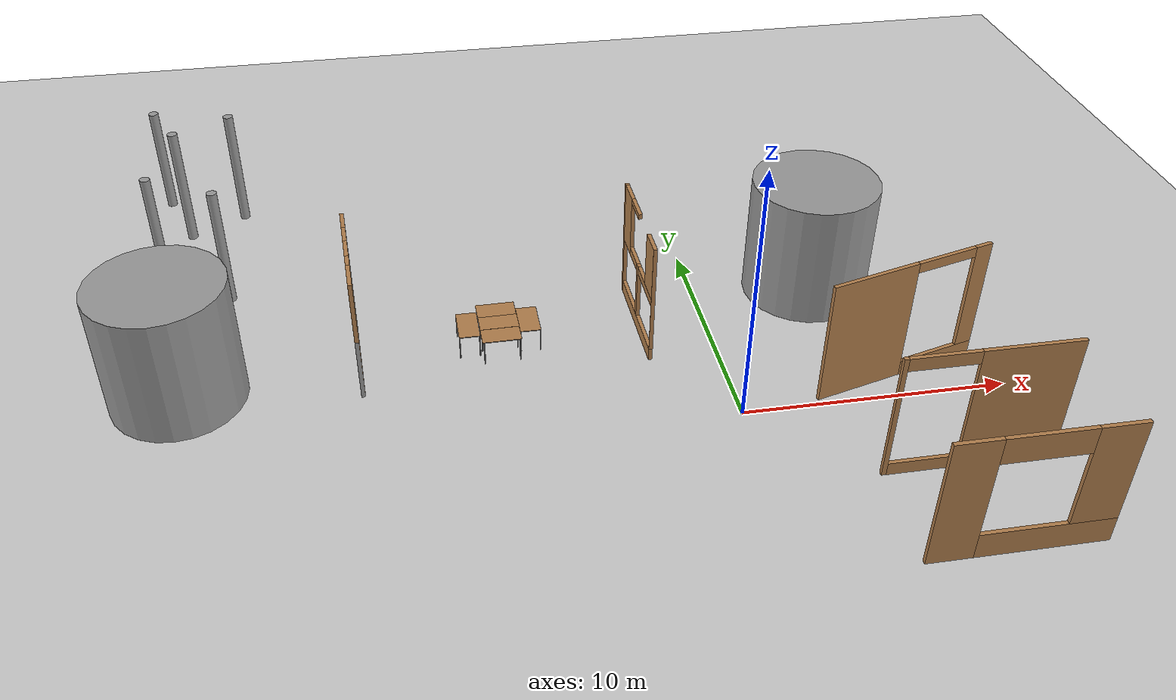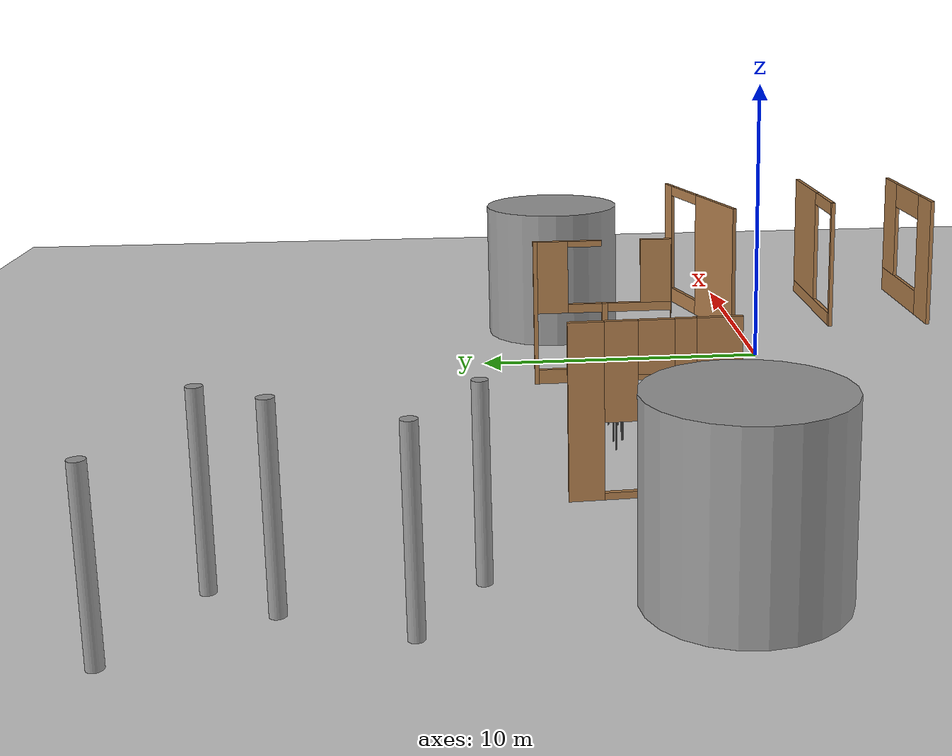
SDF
<sdf version="1.6">
 <world name="default">
  <model name="ground_plane">
   <static>1</static>
   <link name="link">
    <collision name="collision">
     <geometry><plane><normal>0 0 1</normal><size>100 100</size></plane></geometry>
     <surface><friction><ode><mu>100</mu><mu2>50</mu2></ode></friction></surface>
    </collision>
    <visual name="visual">
     <cast_shadows>0</cast_shadows>
     <geometry><plane><normal>0 0 1</normal><size>100 100</size></plane></geometry>
     <material>
      <script><uri>file://media/materials/scripts/gazebo.material</uri><name>Gazebo/Grey</name></script>
     </material>
    </visual>
   </link>
  </model>
  <model name="testing_world3_all_models">
   <link name="link">
    <inertial>
     <mass>200</mass>
     <inertia><ixx>729.167</ixx><ixy>0</ixy><ixz>0</ixz><iyy>729.167</iyy><iyz>0</iyz><izz>625</izz></inertia>
    </inertial>
    <pose>-1.38557 1.65488 2.5 0 -0 0</pose>
    <visual name="visual">
     <geometry><cylinder><radius>2.5</radius><length>5</length></cylinder></geometry>
     <material>
      <script><name>Gazebo/Grey</name><uri>file://media/materials/scripts/gazebo.material</uri></script>
      <shader type="pixel"><normal_map>__default__</normal_map></shader>
      <ambient>0.3 0.3 0.3 1</ambient>
      <diffuse>0.7 0.7 0.7 1</diffuse>
      <specular>0.01 0.01 0.01 1</specular>
      <emissive>0 0 0 1</emissive>
     </material>
    </visual>
    <collision name="collision">
     <geometry><cylinder><radius>2.5</radius><length>5</length></cylinder></geometry>
     <surface>
      <friction>
       <ode><mu>1</mu><mu2>1</mu2><fdir1>0 0 0</fdir1><slip1>0</slip1><slip2>0</slip2></ode>
       <torsional>
        <coefficient>1</coefficient>
        <patch_radius>0</patch_radius>
        <surface_radius>0</surface_radius>
        <use_patch_radius>1</use_patch_radius>
        <ode><slip>0</slip></ode>
       </torsional>
      </friction>
      <bounce><restitution_coefficient>0</restitution_coefficient><threshold>1e+06</threshold></bounce>
      <contact>
       <collide_without_contact>0</collide_without_contact>
       <collide_without_contact_bitmask>1</collide_without_contact_bitmask>
       <collide_bitmask>1</collide_bitmask>
       <ode>
        <soft_cfm>0</soft_cfm>
        <soft_erp>0.2</soft_erp>
        <kp>1e+13</kp>
        <kd>1</kd>
        <max_vel>0.01</max_vel>
        <min_depth>0</min_depth>
       </ode>
       <bullet>
        <split_impulse>1</split_impulse>
        <split_impulse_penetration_threshold>-0.01</split_impulse_penetration_threshold>
        <soft_cfm>0</soft_cfm>
        <soft_erp>0.2</soft_erp>
        <kp>1e+13</kp>
        <kd>1</kd>
       </bullet>
      </contact>
     </surface>
    </collision>
   </link>
   <link name="link_0">
    <inertial>
     <mass>100</mass>
     <inertia><ixx>209.333</ixx><ixy>0</ixy><ixz>0</ixz><iyy>209.333</iyy><iyz>0</iyz><izz>2</izz></inertia>
    </inertial>
    <pose>-27.5231 12.9662 2.04889 0 -0 0</pose>
    <visual name="visual">
     <geometry><cylinder><radius>0.2</radius><length>5</length></cylinder></geometry>
     <material>
      <lighting>1</lighting>
      <script><uri>file://media/materials/scripts/gazebo.material</uri><name>Gazebo/Grey</name></script>
      <shader type="pixel"><normal_map>__default__</normal_map></shader>
      <ambient>0.3 0.3 0.3 1</ambient>
      <diffuse>0.7 0.7 0.7 1</diffuse>
      <specular>0.01 0.01 0.01 1</specular>
      <emissive>0 0 0 1</emissive>
     </material>
    </visual>
    <collision name="collision">
     <geometry><cylinder><radius>0.2</radius><length>5</length></cylinder></geometry>
     <surface>
      <friction>
       <ode><mu>1</mu><mu2>1</mu2><fdir1>0 0 0</fdir1><slip1>0</slip1><slip2>0</slip2></ode>
       <torsional>
        <coefficient>1</coefficient>
        <patch_radius>0</patch_radius>
        <surface_radius>0</surface_radius>
        <use_patch_radius>1</use_patch_radius>
        <ode><slip>0</slip></ode>
       </torsional>
      </friction>
      <bounce><restitution_coefficient>0</restitution_coefficient><threshold>1e+06</threshold></bounce>
      <contact>
       <collide_without_contact>0</collide_without_contact>
       <collide_without_contact_bitmask>1</collide_without_contact_bitmask>
       <collide_bitmask>1</collide_bitmask>
       <ode>
        <soft_cfm>0</soft_cfm>
        <soft_erp>0.2</soft_erp>
        <kp>1e+13</kp>
        <kd>1</kd>
        <max_vel>0.01</max_vel>
        <min_depth>0</min_depth>
       </ode>
       <bullet>
        <split_impulse>1</split_impulse>
        <split_impulse_penetration_threshold>-0.01</split_impulse_penetration_threshold>
        <soft_cfm>0</soft_cfm>
        <soft_erp>0.2</soft_erp>
        <kp>1e+13</kp>
        <kd>1</kd>
       </bullet>
      </contact>
     </surface>
    </collision>
   </link>
   <link name="link_0_clone">
    <inertial>
     <mass>100</mass>
     <inertia><ixx>209.333</ixx><ixy>0</ixy><ixz>0</ixz><iyy>209.333</iyy><iyz>0</iyz><izz>2</izz></inertia>
    </inertial>
    <pose>-24.2152 11.2245 2.5 0 -0 0</pose>
    <visual name="visual">
     <geometry><cylinder><radius>0.2</radius><length>5</length></cylinder></geometry>
     <material>
      <lighting>1</lighting>
      <script><uri>file://media/materials/scripts/gazebo.material</uri><name>Gazebo/Grey</name></script>
      <shader type="pixel"><normal_map>__default__</normal_map></shader>
      <ambient>0.3 0.3 0.3 1</ambient>
      <diffuse>0.7 0.7 0.7 1</diffuse>
      <specular>0.01 0.01 0.01 1</specular>
      <emissive>0 0 0 1</emissive>
     </material>
    </visual>
    <collision name="collision">
     <geometry><cylinder><radius>0.2</radius><length>5</length></cylinder></geometry>
     <surface>
      <friction>
       <ode><mu>1</mu><mu2>1</mu2><fdir1>0 0 0</fdir1><slip1>0</slip1><slip2>0</slip2></ode>
       <torsional>
        <coefficient>1</coefficient>
        <patch_radius>0</patch_radius>
        <surface_radius>0</surface_radius>
        <use_patch_radius>1</use_patch_radius>
        <ode><slip>0</slip></ode>
       </torsional>
      </friction>
      <bounce><restitution_coefficient>0</restitution_coefficient><threshold>1e+06</threshold></bounce>
      <contact>
       <collide_without_contact>0</collide_without_contact>
       <collide_without_contact_bitmask>1</collide_without_contact_bitmask>
       <collide_bitmask>1</collide_bitmask>
       <ode>
        <soft_cfm>0</soft_cfm>
        <soft_erp>0.2</soft_erp>
        <kp>1e+13</kp>
        <kd>1</kd>
        <max_vel>0.01</max_vel>
        <min_depth>0</min_depth>
       </ode>
       <bullet>
        <split_impulse>1</split_impulse>
        <split_impulse_penetration_threshold>-0.01</split_impulse_penetration_threshold>
        <soft_cfm>0</soft_cfm>
        <soft_erp>0.2</soft_erp>
        <kp>1e+13</kp>
        <kd>1</kd>
       </bullet>
      </contact>
     </surface>
    </collision>
   </link>
   <link name="link_0_clone_clone">
    <inertial>
     <mass>100</mass>
     <inertia><ixx>209.333</ixx><ixy>0</ixy><ixz>0</ixz><iyy>209.333</iyy><iyz>0</iyz><izz>2</izz></inertia>
    </inertial>
    <pose>-27.1694 6.37885 2.5 0 -0 0</pose>
    <visual name="visual">
     <geometry><cylinder><radius>0.2</radius><length>5</length></cylinder></geometry>
     <material>
      <lighting>1</lighting>
      <script><uri>file://media/materials/scripts/gazebo.material</uri><name>Gazebo/Grey</name></script>
      <shader type="pixel"><normal_map>__default__</normal_map></shader>
      <ambient>0.3 0.3 0.3 1</ambient>
      <diffuse>0.7 0.7 0.7 1</diffuse>
      <specular>0.01 0.01 0.01 1</specular>
      <emissive>0 0 0 1</emissive>
     </material>
    </visual>
    <collision name="collision">
     <geometry><cylinder><radius>0.2</radius><length>5</length></cylinder></geometry>
     <surface>
      <friction>
       <ode><mu>1</mu><mu2>1</mu2><fdir1>0 0 0</fdir1><slip1>0</slip1><slip2>0</slip2></ode>
       <torsional>
        <coefficient>1</coefficient>
        <patch_radius>0</patch_radius>
        <surface_radius>0</surface_radius>
        <use_patch_radius>1</use_patch_radius>
        <ode><slip>0</slip></ode>
       </torsional>
      </friction>
      <bounce><restitution_coefficient>0</restitution_coefficient><threshold>1e+06</threshold></bounce>
      <contact>
       <collide_without_contact>0</collide_without_contact>
       <collide_without_contact_bitmask>1</collide_without_contact_bitmask>
       <collide_bitmask>1</collide_bitmask>
       <ode>
        <soft_cfm>0</soft_cfm>
        <soft_erp>0.2</soft_erp>
        <kp>1e+13</kp>
        <kd>1</kd>
        <max_vel>0.01</max_vel>
        <min_depth>0</min_depth>
       </ode>
       <bullet>
        <split_impulse>1</split_impulse>
        <split_impulse_penetration_threshold>-0.01</split_impulse_penetration_threshold>
        <soft_cfm>0</soft_cfm>
        <soft_erp>0.2</soft_erp>
        <kp>1e+13</kp>
        <kd>1</kd>
       </bullet>
      </contact>
     </surface>
    </collision>
   </link>
   <link name="link_0_clone_clone_0">
    <inertial>
     <mass>100</mass>
     <inertia><ixx>209.333</ixx><ixy>0</ixy><ixz>0</ixz><iyy>209.333</iyy><iyz>0</iyz><izz>2</izz></inertia>
    </inertial>
    <pose>-26.3097 9.3818 2.82317 0 -0 0</pose>
    <visual name="visual">
     <geometry><cylinder><radius>0.2</radius><length>5</length></cylinder></geometry>
     <material>
      <lighting>1</lighting>
      <script><uri>file://media/materials/scripts/gazebo.material</uri><name>Gazebo/Grey</name></script>
      <shader type="pixel"><normal_map>__default__</normal_map></shader>
      <ambient>0.3 0.3 0.3 1</ambient>
      <diffuse>0.7 0.7 0.7 1</diffuse>
      <specular>0.01 0.01 0.01 1</specular>
      <emissive>0 0 0 1</emissive>
     </material>
    </visual>
    <collision name="collision">
     <geometry><cylinder><radius>0.2</radius><length>5</length></cylinder></geometry>
     <surface>
      <friction>
       <ode><mu>1</mu><mu2>1</mu2><fdir1>0 0 0</fdir1><slip1>0</slip1><slip2>0</slip2></ode>
       <torsional>
        <coefficient>1</coefficient>
        <patch_radius>0</patch_radius>
        <surface_radius>0</surface_radius>
        <use_patch_radius>1</use_patch_radius>
        <ode><slip>0</slip></ode>
       </torsional>
      </friction>
      <bounce><restitution_coefficient>0</restitution_coefficient><threshold>1e+06</threshold></bounce>
      <contact>
       <collide_without_contact>0</collide_without_contact>
       <collide_without_contact_bitmask>1</collide_without_contact_bitmask>
       <collide_bitmask>1</collide_bitmask>
       <ode>
        <soft_cfm>0</soft_cfm>
        <soft_erp>0.2</soft_erp>
        <kp>1e+13</kp>
        <kd>1</kd>
        <max_vel>0.01</max_vel>
        <min_depth>0</min_depth>
       </ode>
       <bullet>
        <split_impulse>1</split_impulse>
        <split_impulse_penetration_threshold>-0.01</split_impulse_penetration_threshold>
        <soft_cfm>0</soft_cfm>
        <soft_erp>0.2</soft_erp>
        <kp>1e+13</kp>
        <kd>1</kd>
       </bullet>
      </contact>
     </surface>
    </collision>
   </link>
   <link name="link_0_clone_clone_1">
    <inertial>
     <mass>100</mass>
     <inertia><ixx>209.333</ixx><ixy>0</ixy><ixz>0</ixz><iyy>209.333</iyy><iyz>0</iyz><izz>2</izz></inertia>
    </inertial>
    <pose>-24.5503 4.86502 2.5 0 -0 0</pose>
    <visual name="visual">
     <geometry><cylinder><radius>0.2</radius><length>5</length></cylinder></geometry>
     <material>
      <lighting>1</lighting>
      <script><uri>file://media/materials/scripts/gazebo.material</uri><name>Gazebo/Grey</name></script>
      <shader type="pixel"><normal_map>__default__</normal_map></shader>
      <ambient>0.3 0.3 0.3 1</ambient>
      <diffuse>0.7 0.7 0.7 1</diffuse>
      <specular>0.01 0.01 0.01 1</specular>
      <emissive>0 0 0 1</emissive>
     </material>
    </visual>
    <collision name="collision">
     <geometry><cylinder><radius>0.2</radius><length>5</length></cylinder></geometry>
     <surface>
      <friction>
       <ode><mu>1</mu><mu2>1</mu2><fdir1>0 0 0</fdir1><slip1>0</slip1><slip2>0</slip2></ode>
       <torsional>
        <coefficient>1</coefficient>
        <patch_radius>0</patch_radius>
        <surface_radius>0</surface_radius>
        <use_patch_radius>1</use_patch_radius>
        <ode><slip>0</slip></ode>
       </torsional>
      </friction>
      <bounce><restitution_coefficient>0</restitution_coefficient><threshold>1e+06</threshold></bounce>
      <contact>
       <collide_without_contact>0</collide_without_contact>
       <collide_without_contact_bitmask>1</collide_without_contact_bitmask>
       <collide_bitmask>1</collide_bitmask>
       <ode>
        <soft_cfm>0</soft_cfm>
        <soft_erp>0.2</soft_erp>
        <kp>1e+13</kp>
        <kd>1</kd>
        <max_vel>0.01</max_vel>
        <min_depth>0</min_depth>
       </ode>
       <bullet>
        <split_impulse>1</split_impulse>
        <split_impulse_penetration_threshold>-0.01</split_impulse_penetration_threshold>
        <soft_cfm>0</soft_cfm>
        <soft_erp>0.2</soft_erp>
        <kp>1e+13</kp>
        <kd>1</kd>
       </bullet>
      </contact>
     </surface>
    </collision>
   </link>
   <link name="link_clone">
    <inertial>
     <mass>200</mass>
     <inertia><ixx>729.167</ixx><ixy>0</ixy><ixz>0</ixz><iyy>729.167</iyy><iyz>0</iyz><izz>625</izz></inertia>
    </inertial>
    <pose>-26.1585 -1.04313 2.5 0 -0 0</pose>
    <visual name="visual">
     <geometry><cylinder><radius>2.5</radius><length>5</length></cylinder></geometry>
     <material>
      <script><name>Gazebo/Grey</name><uri>file://media/materials/scripts/gazebo.material</uri></script>
      <shader type="pixel"><normal_map>__default__</normal_map></shader>
      <ambient>0.3 0.3 0.3 1</ambient>
      <diffuse>0.7 0.7 0.7 1</diffuse>
      <specular>0.01 0.01 0.01 1</specular>
      <emissive>0 0 0 1</emissive>
     </material>
    </visual>
    <collision name="collision">
     <geometry><cylinder><radius>2.5</radius><length>5</length></cylinder></geometry>
     <surface>
      <friction>
       <ode><mu>1</mu><mu2>1</mu2><fdir1>0 0 0</fdir1><slip1>0</slip1><slip2>0</slip2></ode>
       <torsional>
        <coefficient>1</coefficient>
        <patch_radius>0</patch_radius>
        <surface_radius>0</surface_radius>
        <use_patch_radius>1</use_patch_radius>
        <ode><slip>0</slip></ode>
       </torsional>
      </friction>
      <bounce><restitution_coefficient>0</restitution_coefficient><threshold>1e+06</threshold></bounce>
      <contact>
       <collide_without_contact>0</collide_without_contact>
       <collide_without_contact_bitmask>1</collide_without_contact_bitmask>
       <collide_bitmask>1</collide_bitmask>
       <ode>
        <soft_cfm>0</soft_cfm>
        <soft_erp>0.2</soft_erp>
        <kp>1e+13</kp>
        <kd>1</kd>
        <max_vel>0.01</max_vel>
        <min_depth>0</min_depth>
       </ode>
       <bullet>
        <split_impulse>1</split_impulse>
        <split_impulse_penetration_threshold>-0.01</split_impulse_penetration_threshold>
        <soft_cfm>0</soft_cfm>
        <soft_erp>0.2</soft_erp>
        <kp>1e+13</kp>
        <kd>1</kd>
       </bullet>
      </contact>
     </surface>
    </collision>
   </link>
   <model name="table">
    <static>1</static>
    <link name="link">
     <collision name="surface">
      <pose>0 0 1 0 -0 0</pose>
      <geometry><box><size>1.5 0.8 0.03</size></box></geometry>
      <surface><friction><ode><mu>0.6</mu><mu2>0.6</mu2></ode></friction></surface>
     </collision>
     <visual name="visual1">
      <pose>0 0 1 0 -0 0</pose>
      <geometry><box><size>1.5 0.8 0.03</size></box></geometry>
      <material>
       <script><uri>file://media/materials/scripts/gazebo.material</uri><name>Gazebo/Wood</name></script>
      </material>
     </visual>
     <collision name="front_left_leg">
      <pose>0.68 0.38 0.5 0 -0 0</pose>
      <geometry><cylinder><radius>0.02</radius><length>1</length></cylinder></geometry>
     </collision>
     <visual name="front_left_leg">
      <pose>0.68 0.38 0.5 0 -0 0</pose>
      <geometry><cylinder><radius>0.02</radius><length>1</length></cylinder></geometry>
      <material>
       <script><uri>file://media/materials/scripts/gazebo.material</uri><name>Gazebo/Grey</name></script>
      </material>
     </visual>
     <collision name="front_right_leg">
      <pose>0.68 -0.38 0.5 0 -0 0</pose>
      <geometry><cylinder><radius>0.02</radius><length>1</length></cylinder></geometry>
     </collision>
     <visual name="front_right_leg">
      <pose>0.68 -0.38 0.5 0 -0 0</pose>
      <geometry><cylinder><radius>0.02</radius><length>1</length></cylinder></geometry>
      <material>
       <script><uri>file://media/materials/scripts/gazebo.material</uri><name>Gazebo/Grey</name></script>
      </material>
     </visual>
     <collision name="back_right_leg">
      <pose>-0.68 -0.38 0.5 0 -0 0</pose>
      <geometry><cylinder><radius>0.02</radius><length>1</length></cylinder></geometry>
     </collision>
     <visual name="back_right_leg">
      <pose>-0.68 -0.38 0.5 0 -0 0</pose>
      <geometry><cylinder><radius>0.02</radius><length>1</length></cylinder></geometry>
      <material>
       <script><uri>file://media/materials/scripts/gazebo.material</uri><name>Gazebo/Grey</name></script>
      </material>
     </visual>
     <collision name="back_left_leg">
      <pose>-0.68 0.38 0.5 0 -0 0</pose>
      <geometry><cylinder><radius>0.02</radius><length>1</length></cylinder></geometry>
     </collision>
     <visual name="back_left_leg">
      <pose>-0.68 0.38 0.5 0 -0 0</pose>
      <geometry><cylinder><radius>0.02</radius><length>1</length></cylinder></geometry>
      <material>
       <script><uri>file://media/materials/scripts/gazebo.material</uri><name>Gazebo/Grey</name></script>
      </material>
     </visual>
    </link>
    <pose>-14.2177 0.080992 -0 0 -0 0</pose>
   </model>
   <model name="table_clone">
    <static>1</static>
    <link name="link">
     <collision name="surface">
      <pose>0 0 1 0 -0 0</pose>
      <geometry><box><size>1.5 0.8 0.03</size></box></geometry>
      <surface><friction><ode><mu>0.6</mu><mu2>0.6</mu2></ode></friction></surface>
     </collision>
     <visual name="visual1">
      <pose>0 0 1 0 -0 0</pose>
      <geometry><box><size>1.5 0.8 0.03</size></box></geometry>
      <material>
       <script><uri>file://media/materials/scripts/gazebo.material</uri><name>Gazebo/Wood</name></script>
      </material>
     </visual>
     <collision name="front_left_leg">
      <pose>0.68 0.38 0.5 0 -0 0</pose>
      <geometry><cylinder><radius>0.02</radius><length>1</length></cylinder></geometry>
     </collision>
     <visual name="front_left_leg">
      <pose>0.68 0.38 0.5 0 -0 0</pose>
      <geometry><cylinder><radius>0.02</radius><length>1</length></cylinder></geometry>
      <material>
       <script><uri>file://media/materials/scripts/gazebo.material</uri><name>Gazebo/Grey</name></script>
      </material>
     </visual>
     <collision name="front_right_leg">
      <pose>0.68 -0.38 0.5 0 -0 0</pose>
      <geometry><cylinder><radius>0.02</radius><length>1</length></cylinder></geometry>
     </collision>
     <visual name="front_right_leg">
      <pose>0.68 -0.38 0.5 0 -0 0</pose>
      <geometry><cylinder><radius>0.02</radius><length>1</length></cylinder></geometry>
      <material>
       <script><uri>file://media/materials/scripts/gazebo.material</uri><name>Gazebo/Grey</name></script>
      </material>
     </visual>
     <collision name="back_right_leg">
      <pose>-0.68 -0.38 0.5 0 -0 0</pose>
      <geometry><cylinder><radius>0.02</radius><length>1</length></cylinder></geometry>
     </collision>
     <visual name="back_right_leg">
      <pose>-0.68 -0.38 0.5 0 -0 0</pose>
      <geometry><cylinder><radius>0.02</radius><length>1</length></cylinder></geometry>
      <material>
       <script><uri>file://media/materials/scripts/gazebo.material</uri><name>Gazebo/Grey</name></script>
      </material>
     </visual>
     <collision name="back_left_leg">
      <pose>-0.68 0.38 0.5 0 -0 0</pose>
      <geometry><cylinder><radius>0.02</radius><length>1</length></cylinder></geometry>
     </collision>
     <visual name="back_left_leg">
      <pose>-0.68 0.38 0.5 0 -0 0</pose>
      <geometry><cylinder><radius>0.02</radius><length>1</length></cylinder></geometry>
      <material>
       <script><uri>file://media/materials/scripts/gazebo.material</uri><name>Gazebo/Grey</name></script>
      </material>
     </visual>
    </link>
    <pose>-14.2277 -0.726408 -0 0 -0 0</pose>
   </model>
   <model name="table_clone_0">
    <static>1</static>
    <link name="link">
     <collision name="surface">
      <pose>0 0 1 0 -0 0</pose>
      <geometry><box><size>1.5 0.8 0.03</size></box></geometry>
      <surface><friction><ode><mu>0.6</mu><mu2>0.6</mu2></ode></friction></surface>
     </collision>
     <visual name="visual1">
      <pose>0 0 1 0 -0 0</pose>
      <geometry><box><size>1.5 0.8 0.03</size></box></geometry>
      <material>
       <script><uri>file://media/materials/scripts/gazebo.material</uri><name>Gazebo/Wood</name></script>
      </material>
     </visual>
     <collision name="front_left_leg">
      <pose>0.68 0.38 0.5 0 -0 0</pose>
      <geometry><cylinder><radius>0.02</radius><length>1</length></cylinder></geometry>
     </collision>
     <visual name="front_left_leg">
      <pose>0.68 0.38 0.5 0 -0 0</pose>
      <geometry><cylinder><radius>0.02</radius><length>1</length></cylinder></geometry>
      <material>
       <script><uri>file://media/materials/scripts/gazebo.material</uri><name>Gazebo/Grey</name></script>
      </material>
     </visual>
     <collision name="front_right_leg">
      <pose>0.68 -0.38 0.5 0 -0 0</pose>
      <geometry><cylinder><radius>0.02</radius><length>1</length></cylinder></geometry>
     </collision>
     <visual name="front_right_leg">
      <pose>0.68 -0.38 0.5 0 -0 0</pose>
      <geometry><cylinder><radius>0.02</radius><length>1</length></cylinder></geometry>
      <material>
       <script><uri>file://media/materials/scripts/gazebo.material</uri><name>Gazebo/Grey</name></script>
      </material>
     </visual>
     <collision name="back_right_leg">
      <pose>-0.68 -0.38 0.5 0 -0 0</pose>
      <geometry><cylinder><radius>0.02</radius><length>1</length></cylinder></geometry>
     </collision>
     <visual name="back_right_leg">
      <pose>-0.68 -0.38 0.5 0 -0 0</pose>
      <geometry><cylinder><radius>0.02</radius><length>1</length></cylinder></geometry>
      <material>
       <script><uri>file://media/materials/scripts/gazebo.material</uri><name>Gazebo/Grey</name></script>
      </material>
     </visual>
     <collision name="back_left_leg">
      <pose>-0.68 0.38 0.5 0 -0 0</pose>
      <geometry><cylinder><radius>0.02</radius><length>1</length></cylinder></geometry>
     </collision>
     <visual name="back_left_leg">
      <pose>-0.68 0.38 0.5 0 -0 0</pose>
      <geometry><cylinder><radius>0.02</radius><length>1</length></cylinder></geometry>
      <material>
       <script><uri>file://media/materials/scripts/gazebo.material</uri><name>Gazebo/Grey</name></script>
      </material>
     </visual>
    </link>
    <pose>-14.2241 0.878995 -0 0 -0 0</pose>
   </model>
   <model name="table_clone_1">
    <static>1</static>
    <link name="link">
     <collision name="surface">
      <pose>0 0 1 0 -0 0</pose>
      <geometry><box><size>1.5 0.8 0.03</size></box></geometry>
      <surface><friction><ode><mu>0.6</mu><mu2>0.6</mu2></ode></friction></surface>
     </collision>
     <visual name="visual1">
      <pose>0 0 1 0 -0 0</pose>
      <geometry><box><size>1.5 0.8 0.03</size></box></geometry>
      <material>
       <script><uri>file://media/materials/scripts/gazebo.material</uri><name>Gazebo/Wood</name></script>
      </material>
     </visual>
     <collision name="front_left_leg">
      <pose>0.68 0.38 0.5 0 -0 0</pose>
      <geometry><cylinder><radius>0.02</radius><length>1</length></cylinder></geometry>
     </collision>
     <visual name="front_left_leg">
      <pose>0.68 0.38 0.5 0 -0 0</pose>
      <geometry><cylinder><radius>0.02</radius><length>1</length></cylinder></geometry>
      <material>
       <script><uri>file://media/materials/scripts/gazebo.material</uri><name>Gazebo/Grey</name></script>
      </material>
     </visual>
     <collision name="front_right_leg">
      <pose>0.68 -0.38 0.5 0 -0 0</pose>
      <geometry><cylinder><radius>0.02</radius><length>1</length></cylinder></geometry>
     </collision>
     <visual name="front_right_leg">
      <pose>0.68 -0.38 0.5 0 -0 0</pose>
      <geometry><cylinder><radius>0.02</radius><length>1</length></cylinder></geometry>
      <material>
       <script><uri>file://media/materials/scripts/gazebo.material</uri><name>Gazebo/Grey</name></script>
      </material>
     </visual>
     <collision name="back_right_leg">
      <pose>-0.68 -0.38 0.5 0 -0 0</pose>
      <geometry><cylinder><radius>0.02</radius><length>1</length></cylinder></geometry>
     </collision>
     <visual name="back_right_leg">
      <pose>-0.68 -0.38 0.5 0 -0 0</pose>
      <geometry><cylinder><radius>0.02</radius><length>1</length></cylinder></geometry>
      <material>
       <script><uri>file://media/materials/scripts/gazebo.material</uri><name>Gazebo/Grey</name></script>
      </material>
     </visual>
     <collision name="back_left_leg">
      <pose>-0.68 0.38 0.5 0 -0 0</pose>
      <geometry><cylinder><radius>0.02</radius><length>1</length></cylinder></geometry>
     </collision>
     <visual name="back_left_leg">
      <pose>-0.68 0.38 0.5 0 -0 0</pose>
      <geometry><cylinder><radius>0.02</radius><length>1</length></cylinder></geometry>
      <material>
       <script><uri>file://media/materials/scripts/gazebo.material</uri><name>Gazebo/Grey</name></script>
      </material>
     </visual>
    </link>
    <pose>-13.0707 0.066494 -0 0 -0 1.55845</pose>
   </model>
   <model name="table_clone_2">
    <static>1</static>
    <link name="link">
     <collision name="surface">
      <pose>0 0 1 0 -0 0</pose>
      <geometry><box><size>1.5 0.8 0.03</size></box></geometry>
      <surface><friction><ode><mu>0.6</mu><mu2>0.6</mu2></ode></friction></surface>
     </collision>
     <visual name="visual1">
      <pose>0 0 1 0 -0 0</pose>
      <geometry><box><size>1.5 0.8 0.03</size></box></geometry>
      <material>
       <script><uri>file://media/materials/scripts/gazebo.material</uri><name>Gazebo/Wood</name></script>
      </material>
     </visual>
     <collision name="front_left_leg">
      <pose>0.68 0.38 0.5 0 -0 0</pose>
      <geometry><cylinder><radius>0.02</radius><length>1</length></cylinder></geometry>
     </collision>
     <visual name="front_left_leg">
      <pose>0.68 0.38 0.5 0 -0 0</pose>
      <geometry><cylinder><radius>0.02</radius><length>1</length></cylinder></geometry>
      <material>
       <script><uri>file://media/materials/scripts/gazebo.material</uri><name>Gazebo/Grey</name></script>
      </material>
     </visual>
     <collision name="front_right_leg">
      <pose>0.68 -0.38 0.5 0 -0 0</pose>
      <geometry><cylinder><radius>0.02</radius><length>1</length></cylinder></geometry>
     </collision>
     <visual name="front_right_leg">
      <pose>0.68 -0.38 0.5 0 -0 0</pose>
      <geometry><cylinder><radius>0.02</radius><length>1</length></cylinder></geometry>
      <material>
       <script><uri>file://media/materials/scripts/gazebo.material</uri><name>Gazebo/Grey</name></script>
      </material>
     </visual>
     <collision name="back_right_leg">
      <pose>-0.68 -0.38 0.5 0 -0 0</pose>
      <geometry><cylinder><radius>0.02</radius><length>1</length></cylinder></geometry>
     </collision>
     <visual name="back_right_leg">
      <pose>-0.68 -0.38 0.5 0 -0 0</pose>
      <geometry><cylinder><radius>0.02</radius><length>1</length></cylinder></geometry>
      <material>
       <script><uri>file://media/materials/scripts/gazebo.material</uri><name>Gazebo/Grey</name></script>
      </material>
     </visual>
     <collision name="back_left_leg">
      <pose>-0.68 0.38 0.5 0 -0 0</pose>
      <geometry><cylinder><radius>0.02</radius><length>1</length></cylinder></geometry>
     </collision>
     <visual name="back_left_leg">
      <pose>-0.68 0.38 0.5 0 -0 0</pose>
      <geometry><cylinder><radius>0.02</radius><length>1</length></cylinder></geometry>
      <material>
       <script><uri>file://media/materials/scripts/gazebo.material</uri><name>Gazebo/Grey</name></script>
      </material>
     </visual>
    </link>
    <pose>-15.4004 0.083651 -0 0 -0 -1.57817</pose>
   </model>
   <model name="testing_win4_plus">
    <pose>-8.6972 0.418545 -0 0 -0 0</pose>
    <link name="Wall_0">
     <pose>0 0 0 0 -0 -1.5708</pose>
     <visual name="Wall_0_Visual_0">
      <pose>-2.30434 0 2.5 0 -0 0</pose>
      <geometry><box><size>0.141323 0.15 5</size></box></geometry>
      <material>
       <script><uri>file://media/materials/scripts/gazebo.material</uri><name>Gazebo/Wood</name></script>
       <ambient>1 1 1 1</ambient>
      </material>
      <meta><layer>0</layer></meta>
     </visual>
     <collision name="Wall_0_Collision_0">
      <geometry><box><size>0.141323 0.15 5</size></box></geometry>
      <pose>-2.30434 0 2.5 0 -0 0</pose>
     </collision>
     <visual name="Wall_0_Visual_1">
      <pose>0.070661 0 0.25 0 -0 0</pose>
      <geometry><box><size>4.60868 0.15 0.5</size></box></geometry>
      <material>
       <script><uri>file://media/materials/scripts/gazebo.material</uri><name>Gazebo/Wood</name></script>
       <ambient>1 1 1 1</ambient>
      </material>
      <meta><layer>0</layer></meta>
     </visual>
     <collision name="Wall_0_Collision_1">
      <geometry><box><size>4.60868 0.15 0.5</size></box></geometry>
      <pose>0.070661 0 0.25 0 -0 0</pose>
     </collision>
     <visual name="Wall_0_Visual_2">
      <pose>0.065105 0 1.65 0 -0 0</pose>
      <geometry><box><size>0.197564 0.15 2.3</size></box></geometry>
      <material>
       <script><uri>file://media/materials/scripts/gazebo.material</uri><name>Gazebo/Wood</name></script>
       <ambient>1 1 1 1</ambient>
      </material>
      <meta><layer>0</layer></meta>
     </visual>
     <collision name="Wall_0_Collision_2">
      <geometry><box><size>0.197564 0.15 2.3</size></box></geometry>
      <pose>0.065105 0 1.65 0 -0 0</pose>
     </collision>
     <visual name="Wall_0_Visual_3">
      <pose>2.36944 0 2.75 0 -0 0</pose>
      <geometry><box><size>0.011113 0.15 4.5</size></box></geometry>
      <material>
       <script><uri>file://media/materials/scripts/gazebo.material</uri><name>Gazebo/Wood</name></script>
       <ambient>1 1 1 1</ambient>
      </material>
      <meta><layer>0</layer></meta>
     </visual>
     <collision name="Wall_0_Collision_3">
      <geometry><box><size>0.011113 0.15 4.5</size></box></geometry>
      <pose>2.36944 0 2.75 0 -0 0</pose>
     </collision>
     <visual name="Wall_0_Visual_4">
      <pose>-1.7134 0 3.75 0 -0 0</pose>
      <geometry><box><size>1.04055 0.15 2.5</size></box></geometry>
      <material>
       <script><uri>file://media/materials/scripts/gazebo.material</uri><name>Gazebo/Wood</name></script>
       <ambient>1 1 1 1</ambient>
      </material>
      <meta><layer>0</layer></meta>
     </visual>
     <collision name="Wall_0_Collision_4">
      <geometry><box><size>1.04055 0.15 2.5</size></box></geometry>
      <pose>-1.7134 0 3.75 0 -0 0</pose>
     </collision>
     <visual name="Wall_0_Visual_5">
      <pose>1.26389 0 2.65 0 -0 0</pose>
      <geometry><box><size>2.2 0.15 0.3</size></box></geometry>
      <material>
       <script><uri>file://media/materials/scripts/gazebo.material</uri><name>Gazebo/Wood</name></script>
       <ambient>1 1 1 1</ambient>
      </material>
      <meta><layer>0</layer></meta>
     </visual>
     <collision name="Wall_0_Collision_5">
      <geometry><box><size>2.2 0.15 0.3</size></box></geometry>
      <pose>1.26389 0 2.65 0 -0 0</pose>
     </collision>
     <visual name="Wall_0_Visual_6">
      <pose>-0.613401 0 2.65 0 -0 0</pose>
      <geometry><box><size>1.15945 0.15 0.3</size></box></geometry>
      <material>
       <script><uri>file://media/materials/scripts/gazebo.material</uri><name>Gazebo/Wood</name></script>
       <ambient>1 1 1 1</ambient>
      </material>
      <meta><layer>0</layer></meta>
     </visual>
     <collision name="Wall_0_Collision_6">
      <geometry><box><size>1.15945 0.15 0.3</size></box></geometry>
      <pose>-0.613401 0 2.65 0 -0 0</pose>
     </collision>
     <visual name="Wall_0_Visual_7">
      <pose>1.83538 0 3.9 0 -0 0</pose>
      <geometry><box><size>1.05701 0.15 2.2</size></box></geometry>
      <material>
       <script><uri>file://media/materials/scripts/gazebo.material</uri><name>Gazebo/Wood</name></script>
       <ambient>1 1 1 1</ambient>
      </material>
      <meta><layer>0</layer></meta>
     </visual>
     <collision name="Wall_0_Collision_7">
      <geometry><box><size>1.05701 0.15 2.2</size></box></geometry>
      <pose>1.83538 0 3.9 0 -0 0</pose>
     </collision>
     <visual name="Wall_0_Visual_8">
      <pose>-0.613401 0 4.9 0 -0 0</pose>
      <geometry><box><size>1.15945 0.15 0.2</size></box></geometry>
      <material>
       <script><uri>file://media/materials/scripts/gazebo.material</uri><name>Gazebo/Wood</name></script>
       <ambient>1 1 1 1</ambient>
      </material>
      <meta><layer>0</layer></meta>
     </visual>
     <collision name="Wall_0_Collision_8">
      <geometry><box><size>1.15945 0.15 0.2</size></box></geometry>
      <pose>-0.613401 0 4.9 0 -0 0</pose>
     </collision>
    </link>
    <static>1</static>
   </model>
   <model name="testing_world3_plus1">
    <pose>-19.6038 0.114529 -0 0 0 -1.54114</pose>
    <link name="Wall_0">
     <pose>-0.005 0 0 0 -0 0</pose>
     <visual name="Wall_0_Visual_0">
      <pose>-1.88483 0 2.5 0 -0 0</pose>
      <geometry><box><size>0.980349 0.15 5</size></box></geometry>
      <material>
       <script><uri>file://media/materials/scripts/gazebo.material</uri><name>Gazebo/Wood</name></script>
       <ambient>1 1 1 1</ambient>
      </material>
      <meta><layer>0</layer></meta>
     </visual>
     <collision name="Wall_0_Collision_0">
      <geometry><box><size>0.980349 0.15 5</size></box></geometry>
      <pose>-1.88483 0 2.5 0 -0 0</pose>
     </collision>
     <visual name="Wall_0_Visual_1">
      <pose>0.490174 0 0.1 0 -0 0</pose>
      <geometry><box><size>3.76965 0.15 0.2</size></box></geometry>
      <material>
       <script><uri>file://media/materials/scripts/gazebo.material</uri><name>Gazebo/Wood</name></script>
       <ambient>1 1 1 1</ambient>
      </material>
      <meta><layer>0</layer></meta>
     </visual>
     <collision name="Wall_0_Collision_1">
      <geometry><box><size>3.76965 0.15 0.2</size></box></geometry>
      <pose>0.490174 0 0.1 0 -0 0</pose>
     </collision>
     <visual name="Wall_0_Visual_2">
      <pose>1.74017 0 2.6 0 -0 0</pose>
      <geometry><box><size>1.26965 0.15 4.8</size></box></geometry>
      <material>
       <script><uri>file://media/materials/scripts/gazebo.material</uri><name>Gazebo/Wood</name></script>
       <ambient>1 1 1 1</ambient>
      </material>
      <meta><layer>0</layer></meta>
     </visual>
     <collision name="Wall_0_Collision_2">
      <geometry><box><size>1.26965 0.15 4.8</size></box></geometry>
      <pose>1.74017 0 2.6 0 -0 0</pose>
     </collision>
     <visual name="Wall_0_Visual_3">
      <pose>-0.942326 0 3.6 0 -0 0</pose>
      <geometry><box><size>0.904651 0.15 2.8</size></box></geometry>
      <material>
       <script><uri>file://media/materials/scripts/gazebo.material</uri><name>Gazebo/Wood</name></script>
       <ambient>1 1 1 1</ambient>
      </material>
      <meta><layer>0</layer></meta>
     </visual>
     <collision name="Wall_0_Collision_3">
      <geometry><box><size>0.904651 0.15 2.8</size></box></geometry>
      <pose>-0.942326 0 3.6 0 -0 0</pose>
     </collision>
     <visual name="Wall_0_Visual_4">
      <pose>0.307674 0 2.35 0 -0 0</pose>
      <geometry><box><size>1.59535 0.15 0.3</size></box></geometry>
      <material>
       <script><uri>file://media/materials/scripts/gazebo.material</uri><name>Gazebo/Wood</name></script>
       <ambient>1 1 1 1</ambient>
      </material>
      <meta><layer>0</layer></meta>
     </visual>
     <collision name="Wall_0_Collision_4">
      <geometry><box><size>1.59535 0.15 0.3</size></box></geometry>
      <pose>0.307674 0 2.35 0 -0 0</pose>
     </collision>
     <visual name="Wall_0_Visual_5">
      <pose>0.807674 0 3.75 0 -0 0</pose>
      <geometry><box><size>0.595349 0.15 2.5</size></box></geometry>
      <material>
       <script><uri>file://media/materials/scripts/gazebo.material</uri><name>Gazebo/Wood</name></script>
       <ambient>1 1 1 1</ambient>
      </material>
      <meta><layer>0</layer></meta>
     </visual>
     <collision name="Wall_0_Collision_5">
      <geometry><box><size>0.595349 0.15 2.5</size></box></geometry>
      <pose>0.807674 0 3.75 0 -0 0</pose>
     </collision>
     <visual name="Wall_0_Visual_6">
      <pose>0.01 0 4.25 0 -0 0</pose>
      <geometry><box><size>1 0.15 1.5</size></box></geometry>
      <material>
       <script><uri>file://media/materials/scripts/gazebo.material</uri><name>Gazebo/Wood</name></script>
       <ambient>1 1 1 1</ambient>
      </material>
      <meta><layer>0</layer></meta>
     </visual>
     <collision name="Wall_0_Collision_6">
      <geometry><box><size>1 0.15 1.5</size></box></geometry>
      <pose>0.01 0 4.25 0 -0 0</pose>
     </collision>
    </link>
    <link name="Wall_1">
     <collision name="Wall_1_Collision">
      <geometry><box><size>0.16 0.15 2.5</size></box></geometry>
      <pose>0 0 1.25 0 -0 0</pose>
     </collision>
     <visual name="Wall_1_Visual">
      <pose>0 0 1.25 0 -0 0</pose>
      <geometry><box><size>0.16 0.15 2.5</size></box></geometry>
      <material>
       <script><uri>file://media/materials/scripts/gazebo.material</uri><name>Gazebo/Grey</name></script>
       <ambient>1 1 1 1</ambient>
      </material>
      <meta><layer>0</layer></meta>
     </visual>
     <pose>2.3 0 0 0 -0 0</pose>
    </link>
    <static>1</static>
   </model>
   <static>0</static>
   <pose>6.06121 5.6054 -0 0 -0 0.012018</pose>
  </model>
  <model name="test3win1">
   <pose>6.81044 -5.79351 0 0 -0 0</pose>
   <link name="Wall_2">
    <pose>-0.061 -1.9935 0 0 -0 0</pose>
    <visual name="Wall_2_Visual_0">
     <pose>-2.31858 0 2.5 0 -0 0</pose>
     <geometry><box><size>1.61284 0.15 5</size></box></geometry>
     <material>
      <script><uri>file://media/materials/scripts/gazebo.material</uri><name>Gazebo/Wood</name></script>
      <ambient>1 1 1 1</ambient>
     </material>
     <meta><layer>0</layer></meta>
    </visual>
    <collision name="Wall_2_Collision_0">
     <geometry><box><size>1.61284 0.15 5</size></box></geometry>
     <pose>-2.31858 0 2.5 0 -0 0</pose>
    </collision>
    <visual name="Wall_2_Visual_1">
     <pose>0.806417 0 0.5 0 -0 0</pose>
     <geometry><box><size>4.63717 0.15 1</size></box></geometry>
     <material>
      <script><uri>file://media/materials/scripts/gazebo.material</uri><name>Gazebo/Wood</name></script>
      <ambient>1 1 1 1</ambient>
     </material>
     <meta><layer>0</layer></meta>
    </visual>
    <collision name="Wall_2_Collision_1">
     <geometry><box><size>4.63717 0.15 1</size></box></geometry>
     <pose>0.806417 0 0.5 0 -0 0</pose>
    </collision>
    <visual name="Wall_2_Visual_2">
     <pose>2.30642 0 3 0 -0 0</pose>
     <geometry><box><size>1.63716 0.15 4</size></box></geometry>
     <material>
      <script><uri>file://media/materials/scripts/gazebo.material</uri><name>Gazebo/Wood</name></script>
      <ambient>1 1 1 1</ambient>
     </material>
     <meta><layer>0</layer></meta>
    </visual>
    <collision name="Wall_2_Collision_2">
     <geometry><box><size>1.63716 0.15 4</size></box></geometry>
     <pose>2.30642 0 3 0 -0 0</pose>
    </collision>
    <visual name="Wall_2_Visual_3">
     <pose>-0.012165 0 4.5 0 -0 0</pose>
     <geometry><box><size>3 0.15 1</size></box></geometry>
     <material>
      <script><uri>file://media/materials/scripts/gazebo.material</uri><name>Gazebo/Wood</name></script>
      <ambient>1 1 1 1</ambient>
     </material>
     <meta><layer>0</layer></meta>
    </visual>
    <collision name="Wall_2_Collision_3">
     <geometry><box><size>3 0.15 1</size></box></geometry>
     <pose>-0.012165 0 4.5 0 -0 0</pose>
    </collision>
   </link>
   <link name="Wall_4">
    <pose>0.061 1.9935 0 0 -0 0</pose>
    <visual name="Wall_4_Visual_0">
     <pose>-3.03876 0 2.5 0 -0 0</pose>
     <geometry><box><size>0.172475 0.15 5</size></box></geometry>
     <material>
      <script><uri>file://media/materials/scripts/gazebo.material</uri><name>Gazebo/Wood</name></script>
      <ambient>1 1 1 1</ambient>
     </material>
     <meta><layer>0</layer></meta>
    </visual>
    <collision name="Wall_4_Collision_0">
     <geometry><box><size>0.172475 0.15 5</size></box></geometry>
     <pose>-3.03876 0 2.5 0 -0 0</pose>
    </collision>
    <visual name="Wall_4_Visual_1">
     <pose>0.086238 0 0.25 0 -0 0</pose>
     <geometry><box><size>6.07752 0.15 0.5</size></box></geometry>
     <material>
      <script><uri>file://media/materials/scripts/gazebo.material</uri><name>Gazebo/Wood</name></script>
      <ambient>1 1 1 1</ambient>
     </material>
     <meta><layer>0</layer></meta>
    </visual>
    <collision name="Wall_4_Collision_1">
     <geometry><box><size>6.07752 0.15 0.5</size></box></geometry>
     <pose>0.086238 0 0.25 0 -0 0</pose>
    </collision>
    <visual name="Wall_4_Visual_2">
     <pose>1.33624 0 2.75 0 -0 0</pose>
     <geometry><box><size>3.57753 0.15 4.5</size></box></geometry>
     <material>
      <script><uri>file://media/materials/scripts/gazebo.material</uri><name>Gazebo/Wood</name></script>
      <ambient>1 1 1 1</ambient>
     </material>
     <meta><layer>0</layer></meta>
    </visual>
    <collision name="Wall_4_Collision_2">
     <geometry><box><size>3.57753 0.15 4.5</size></box></geometry>
     <pose>1.33624 0 2.75 0 -0 0</pose>
    </collision>
    <visual name="Wall_4_Visual_3">
     <pose>-1.70253 0 4.75 0 -0 0</pose>
     <geometry><box><size>2.5 0.15 0.5</size></box></geometry>
     <material>
      <script><uri>file://media/materials/scripts/gazebo.material</uri><name>Gazebo/Wood</name></script>
      <ambient>1 1 1 1</ambient>
     </material>
     <meta><layer>0</layer></meta>
    </visual>
    <collision name="Wall_4_Collision_3">
     <geometry><box><size>2.5 0.15 0.5</size></box></geometry>
     <pose>-1.70253 0 4.75 0 -0 0</pose>
    </collision>
   </link>
   <static>1</static>
  </model>
  <model name="test2win2">
   <pose>6.18319 1.17985 0 0 -0 0</pose>
   <link name="Wall_0">
    <pose>0 0 0 0 -0 0.261774</pose>
    <visual name="Wall_0_Visual_0">
     <pose>-1.60217 0 2.5 0 -0 0</pose>
     <geometry><box><size>3.54551 0.15 5</size></box></geometry>
     <material>
      <script><uri>file://media/materials/scripts/gazebo.material</uri><name>Gazebo/Wood</name></script>
      <ambient>1 1 1 1</ambient>
     </material>
     <meta><layer>0</layer></meta>
    </visual>
    <collision name="Wall_0_Collision_0">
     <geometry><box><size>3.54551 0.15 5</size></box></geometry>
     <pose>-1.60217 0 2.5 0 -0 0</pose>
    </collision>
    <visual name="Wall_0_Visual_1">
     <pose>1.77276 0 0.3 0 -0 0</pose>
     <geometry><box><size>3.20433 0.15 0.6</size></box></geometry>
     <material>
      <script><uri>file://media/materials/scripts/gazebo.material</uri><name>Gazebo/Wood</name></script>
      <ambient>1 1 1 1</ambient>
     </material>
     <meta><layer>0</layer></meta>
    </visual>
    <collision name="Wall_0_Collision_1">
     <geometry><box><size>3.20433 0.15 0.6</size></box></geometry>
     <pose>1.77276 0 0.3 0 -0 0</pose>
    </collision>
    <visual name="Wall_0_Visual_2">
     <pose>3.02276 0 2.8 0 -0 0</pose>
     <geometry><box><size>0.70433 0.15 4.4</size></box></geometry>
     <material>
      <script><uri>file://media/materials/scripts/gazebo.material</uri><name>Gazebo/Wood</name></script>
      <ambient>1 1 1 1</ambient>
     </material>
     <meta><layer>0</layer></meta>
    </visual>
    <collision name="Wall_0_Collision_2">
     <geometry><box><size>0.70433 0.15 4.4</size></box></geometry>
     <pose>3.02276 0 2.8 0 -0 0</pose>
    </collision>
    <visual name="Wall_0_Visual_3">
     <pose>1.42059 0 4.8 0 -0 0</pose>
     <geometry><box><size>2.5 0.15 0.4</size></box></geometry>
     <material>
      <script><uri>file://media/materials/scripts/gazebo.material</uri><name>Gazebo/Wood</name></script>
      <ambient>1 1 1 1</ambient>
     </material>
     <meta><layer>0</layer></meta>
    </visual>
    <collision name="Wall_0_Collision_3">
     <geometry><box><size>2.5 0.15 0.4</size></box></geometry>
     <pose>1.42059 0 4.8 0 -0 0</pose>
    </collision>
   </link>
   <static>1</static>
  </model>
 </world>
</sdf>
